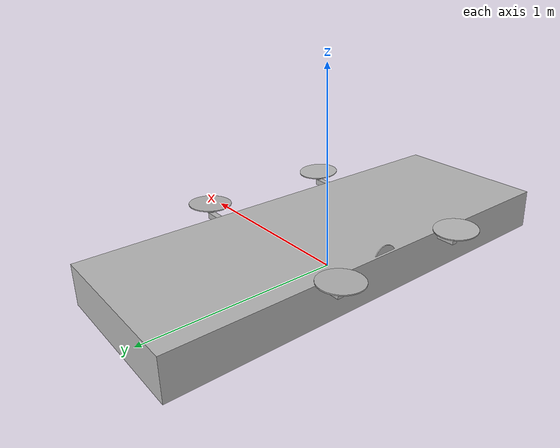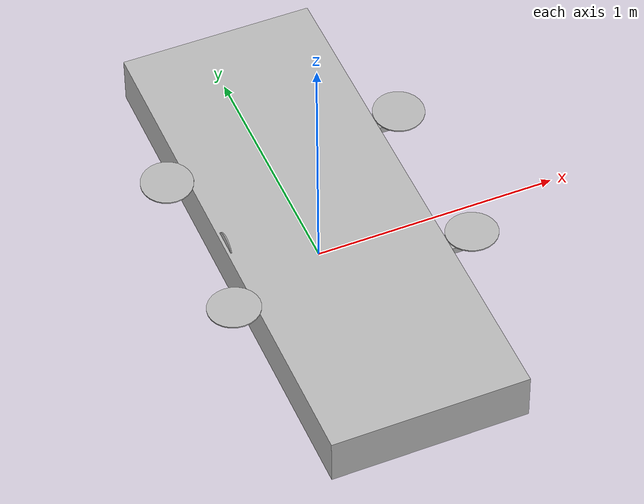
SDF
<sdf version="1.7">
 <world name="alti_transition_runway">
  <plugin filename="libignition-gazebo-physics-system.so" name="ignition::gazebo::systems::Physics"/>
  <plugin filename="libignition-gazebo-user-commands-system.so" name="ignition::gazebo::systems::UserCommands"/>
  <plugin filename="libignition-gazebo-scene-broadcaster-system.so" name="ignition::gazebo::systems::SceneBroadcaster"/>
  <plugin filename="libignition-gazebo-imu-system.so" name="ignition::gazebo::systems::Imu"/>
  <scene><ambient>1.0 1.0 1.0</ambient><background>0.8 0.8 0.8</background></scene>
  <light type="directional" name="sun">
   <pose>0 0 10 0 0 0</pose>
   <diffuse>0.8 0.8 0.8 1</diffuse>
   <specular>0.8 0.8 0.8 1</specular>
   <attenuation>
    <range>1000</range>
    <constant>0.9</constant>
    <linear>0.01</linear>
    <quadratic>0.001</quadratic>
   </attenuation>
   <direction>-0.5 0.1 -0.9</direction>
  </light>
  <include><pose>0 0 0.2 0 0 0</pose><uri>model://alti_transition_quad</uri></include>
 </world>
</sdf>
